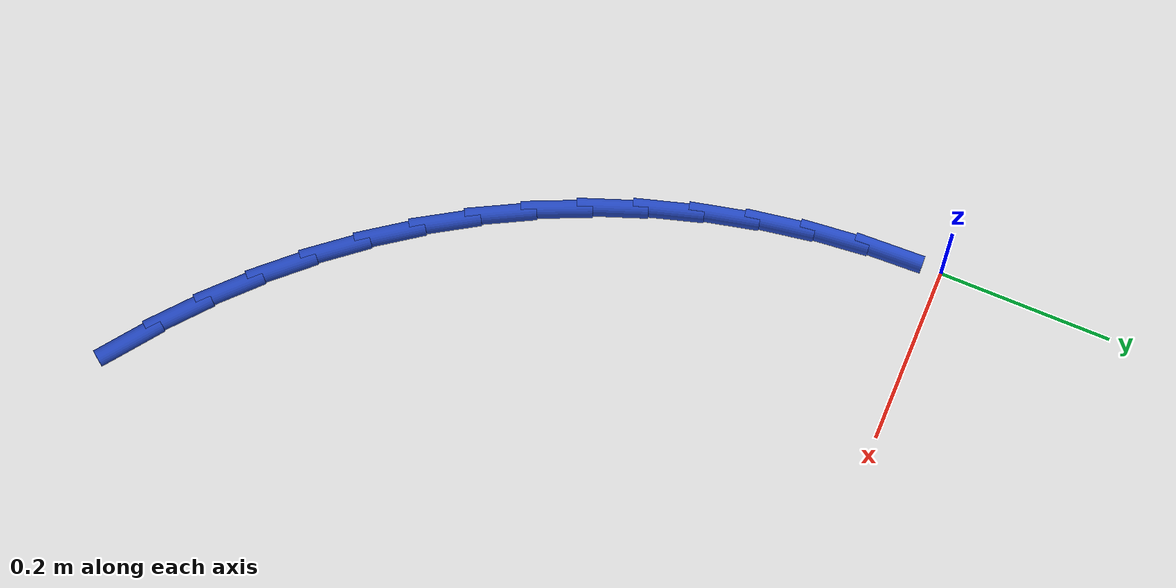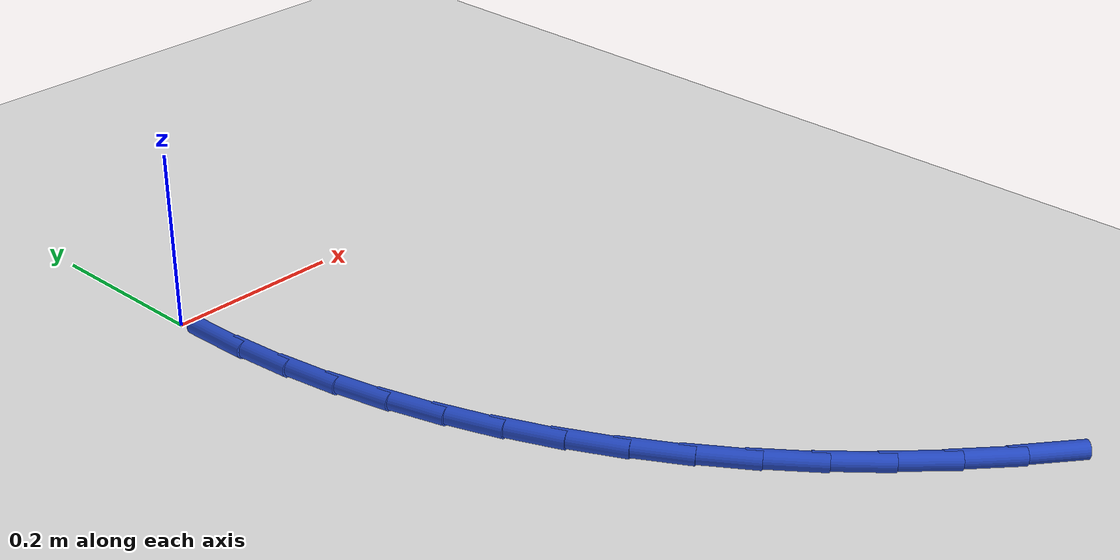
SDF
<sdf version="1.6">
 <world name="default">
  <model name="ground_plane">
   <static>1</static>
   <link name="link">
    <collision name="collision">
     <geometry><plane><normal>0 0 1</normal><size>100 100</size></plane></geometry>
     <surface><friction><ode><mu>100</mu><mu2>50</mu2></ode></friction></surface>
    </collision>
    <visual name="visual">
     <cast_shadows>0</cast_shadows>
     <geometry><plane><normal>0 0 1</normal><size>100 100</size></plane></geometry>
     <material>
      <script><uri>file://media/materials/scripts/gazebo.material</uri><name>Gazebo/WhiteGlow</name></script>
     </material>
    </visual>
   </link>
  </model>
  <model name="line">
   <link name="link_105">
    <pose>0.40923570849928254 -0.8060004311647772 0.01 0 1.57 -0.6684045513307205</pose>
    <collision name="collision">
     <geometry><cylinder><radius>0.01</radius><length>0.08</length></cylinder></geometry>
    </collision>
    <visual name="visual">
     <material>
      <script><name>Gazebo/Blue</name><uri>file://media/materials/scripts/gazebo.material</uri></script>
     </material>
     <geometry><cylinder><radius>0.01</radius><length>0.08</length></cylinder></geometry>
    </visual>
   </link>
   <link name="link_106">
    <pose>0.3604463492732053 -0.7674733968660458 0.01 0 1.57 -0.7282156269288452</pose>
    <collision name="collision">
     <geometry><cylinder><radius>0.01</radius><length>0.08</length></cylinder></geometry>
    </collision>
    <visual name="visual">
     <material>
      <script><name>Gazebo/Blue</name><uri>file://media/materials/scripts/gazebo.material</uri></script>
     </material>
     <geometry><cylinder><radius>0.01</radius><length>0.08</length></cylinder></geometry>
    </visual>
   </link>
   <link name="link_107">
    <pose>0.3137943561092576 -0.7258733848041933 0.01 0 1.57 -0.7879179227160455</pose>
    <collision name="collision">
     <geometry><cylinder><radius>0.01</radius><length>0.08</length></cylinder></geometry>
    </collision>
    <visual name="visual">
     <material>
      <script><name>Gazebo/Blue</name><uri>file://media/materials/scripts/gazebo.material</uri></script>
     </material>
     <geometry><cylinder><radius>0.01</radius><length>0.08</length></cylinder></geometry>
    </visual>
   </link>
   <link name="link_108">
    <pose>0.26955219314022305 -0.6814076989333486 0.01 0 1.57 -0.8480578068760016</pose>
    <collision name="collision">
     <geometry><cylinder><radius>0.01</radius><length>0.08</length></cylinder></geometry>
    </collision>
    <visual name="visual">
     <material>
      <script><name>Gazebo/Blue</name><uri>file://media/materials/scripts/gazebo.material</uri></script>
     </material>
     <geometry><cylinder><radius>0.01</radius><length>0.08</length></cylinder></geometry>
    </visual>
   </link>
   <link name="link_109">
    <pose>0.2279923244988874 -0.6342836432076432 0.01 0 1.57 -0.9091667073081331</pose>
    <collision name="collision">
     <geometry><cylinder><radius>0.01</radius><length>0.08</length></cylinder></geometry>
    </collision>
    <visual name="visual">
     <material>
      <script><name>Gazebo/Blue</name><uri>file://media/materials/scripts/gazebo.material</uri></script>
     </material>
     <geometry><cylinder><radius>0.01</radius><length>0.08</length></cylinder></geometry>
    </visual>
   </link>
   <link name="link_110">
    <pose>0.1893872143180342 -0.5847085215812059 0.01 0 1.57 -0.9717607557439427</pose>
    <collision name="collision">
     <geometry><cylinder><radius>0.01</radius><length>0.08</length></cylinder></geometry>
    </collision>
    <visual name="visual">
     <material>
      <script><name>Gazebo/Blue</name><uri>file://media/materials/scripts/gazebo.material</uri></script>
     </material>
     <geometry><cylinder><radius>0.01</radius><length>0.08</length></cylinder></geometry>
    </visual>
   </link>
   <link name="link_111">
    <pose>0.15400932673044793 -0.5328896380081674 0.01 0 1.57 -1.036302628204853</pose>
    <collision name="collision">
     <geometry><cylinder><radius>0.01</radius><length>0.08</length></cylinder></geometry>
    </collision>
    <visual name="visual">
     <material>
      <script><name>Gazebo/Blue</name><uri>file://media/materials/scripts/gazebo.material</uri></script>
     </material>
     <geometry><cylinder><radius>0.01</radius><length>0.08</length></cylinder></geometry>
    </visual>
   </link>
   <link name="link_112">
    <pose>0.12212862820928899 -0.47903432011666425 0.01 0 1.57 -1.1017316357353046</pose>
    <collision name="collision">
     <geometry><cylinder><radius>0.01</radius><length>0.08</length></cylinder></geometry>
    </collision>
    <visual name="visual">
     <material>
      <script><name>Gazebo/Blue</name><uri>file://media/materials/scripts/gazebo.material</uri></script>
     </material>
     <geometry><cylinder><radius>0.01</radius><length>0.08</length></cylinder></geometry>
    </visual>
   </link>
   <link name="link_113">
    <pose>0.09390883964600714 -0.42335090258109664 0.01 0 1.57 -1.1661877954772462</pose>
    <collision name="collision">
     <geometry><cylinder><radius>0.01</radius><length>0.08</length></cylinder></geometry>
    </collision>
    <visual name="visual">
     <material>
      <script><name>Gazebo/Blue</name><uri>file://media/materials/scripts/gazebo.material</uri></script>
     </material>
     <geometry><cylinder><radius>0.01</radius><length>0.08</length></cylinder></geometry>
    </visual>
   </link>
   <link name="link_114">
    <pose>0.0693701259149096 -0.36604908076821147 0.01 0 1.57 -1.2295918096916363</pose>
    <collision name="collision">
     <geometry><cylinder><radius>0.01</radius><length>0.08</length></cylinder></geometry>
    </collision>
    <visual name="visual">
     <material>
      <script><name>Gazebo/Blue</name><uri>file://media/materials/scripts/gazebo.material</uri></script>
     </material>
     <geometry><cylinder><radius>0.01</radius><length>0.08</length></cylinder></geometry>
    </visual>
   </link>
   <link name="link_115">
    <pose>0.048522479605206864 -0.30733864646252135 0.01 0 1.57 -1.2920390674155267</pose>
    <collision name="collision">
     <geometry><cylinder><radius>0.01</radius><length>0.08</length></cylinder></geometry>
    </collision>
    <visual name="visual">
     <material>
      <script><name>Gazebo/Blue</name><uri>file://media/materials/scripts/gazebo.material</uri></script>
     </material>
     <geometry><cylinder><radius>0.01</radius><length>0.08</length></cylinder></geometry>
    </visual>
   </link>
   <link name="link_116">
    <pose>0.03137589330611036 -0.24742939144854212 0.01 0 1.57 -1.3536523053978329</pose>
    <collision name="collision">
     <geometry><cylinder><radius>0.01</radius><length>0.08</length></cylinder></geometry>
    </collision>
    <visual name="visual">
     <material>
      <script><name>Gazebo/Blue</name><uri>file://media/materials/scripts/gazebo.material</uri></script>
     </material>
     <geometry><cylinder><radius>0.01</radius><length>0.08</length></cylinder></geometry>
    </visual>
   </link>
   <link name="link_117">
    <pose>0.017940359606830606 -0.18653110751078672 0.01 0 1.57 -1.4145751952607473</pose>
    <collision name="collision">
     <geometry><cylinder><radius>0.01</radius><length>0.08</length></cylinder></geometry>
    </collision>
    <visual name="visual">
     <material>
      <script><name>Gazebo/Blue</name><uri>file://media/materials/scripts/gazebo.material</uri></script>
     </material>
     <geometry><cylinder><radius>0.01</radius><length>0.08</length></cylinder></geometry>
    </visual>
   </link>
   <link name="link_118">
    <pose>0.00822587109657839 -0.12485358643376873 0.01 0 1.57 -1.474966381128654</pose>
    <collision name="collision">
     <geometry><cylinder><radius>0.01</radius><length>0.08</length></cylinder></geometry>
    </collision>
    <visual name="visual">
     <material>
      <script><name>Gazebo/Blue</name><uri>file://media/materials/scripts/gazebo.material</uri></script>
     </material>
     <geometry><cylinder><radius>0.01</radius><length>0.08</length></cylinder></geometry>
    </visual>
   </link>
   <link name="link_119">
    <pose>0.0022424203645645194 -0.06260662000200143 0.01 0 1.57 -1.5349940080205096</pose>
    <collision name="collision">
     <geometry><cylinder><radius>0.01</radius><length>0.08</length></cylinder></geometry>
    </collision>
    <visual name="visual">
     <material>
      <script><name>Gazebo/Blue</name><uri>file://media/materials/scripts/gazebo.material</uri></script>
     </material>
     <geometry><cylinder><radius>0.01</radius><length>0.08</length></cylinder></geometry>
    </visual>
   </link>
  </model>
 </world>
</sdf>
